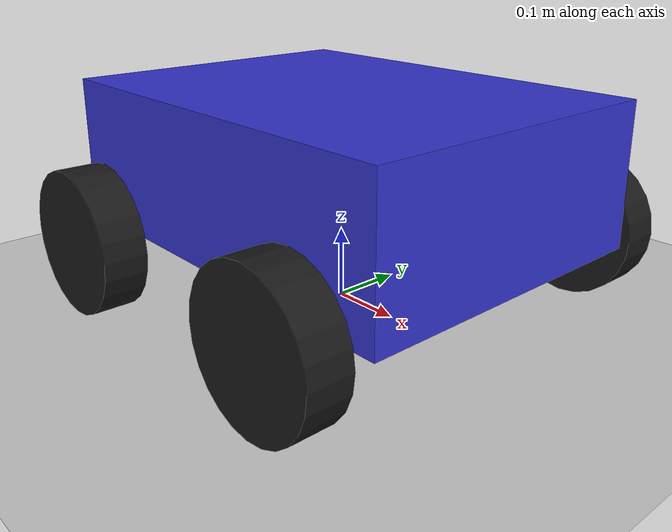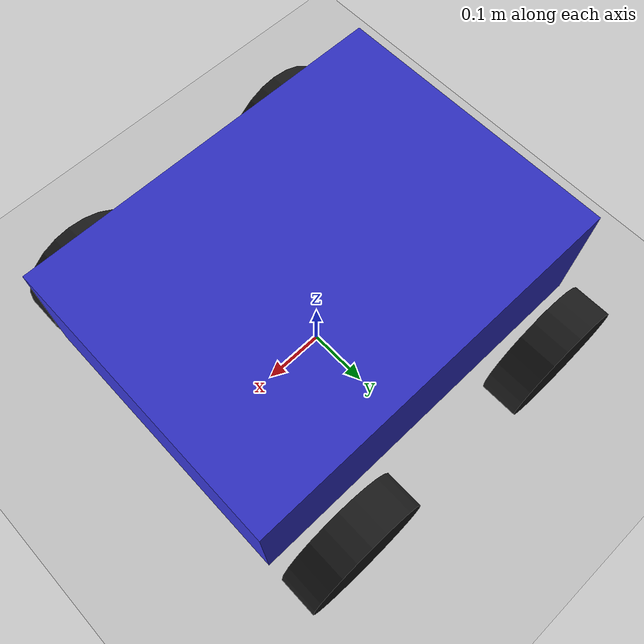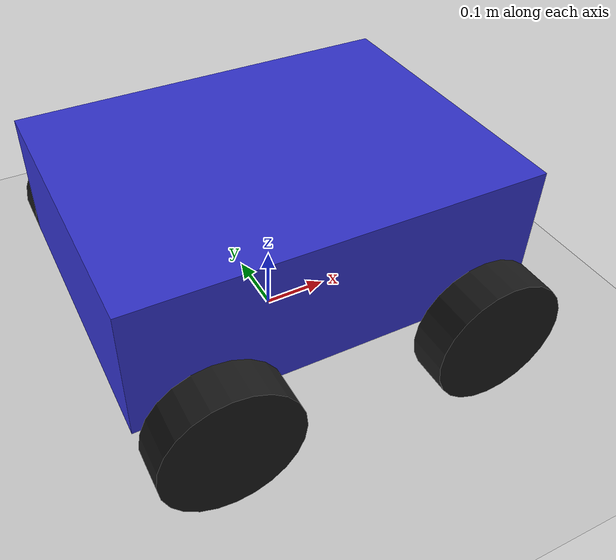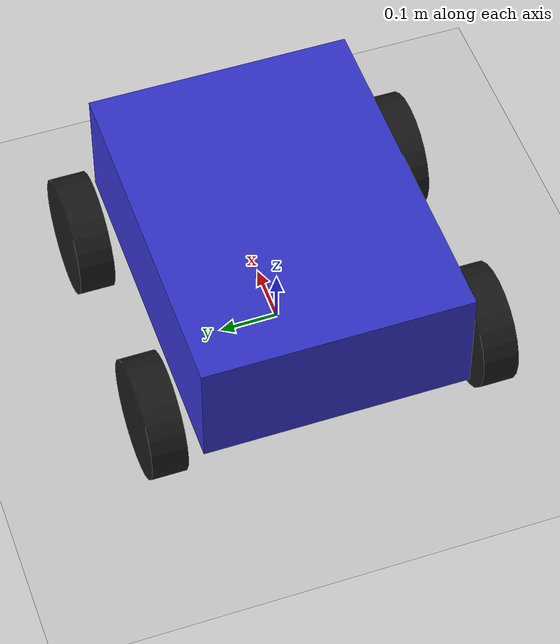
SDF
<?xml version="1.0" ?>

<sdf version="1.9">

  <world name="mecanum_test_world">

    <physics name="1ms" type="ode">
      <max_step_size>0.001</max_step_size>
      <real_time_factor>1.0</real_time_factor>
    </physics>

    <!-- Ground -->
    <model name="ground">

      <static>true</static>

      <link name="ground_link">

        <collision name="collision">
          <geometry>
            <plane>
              <normal>0 0 1</normal>
              <size>10 10</size>
            </plane>
          </geometry>
        </collision>

        <visual name="visual">
          <geometry>
            <plane>
              <normal>0 0 1</normal>
              <size>10 10</size>
            </plane>
          </geometry>
        </visual>

      </link>

    </model>

    <!-- Light -->
    <light
      name="sun"
      type="directional">

      <pose>0 0 5 0 0 0</pose>

      <diffuse>1 1 1 1</diffuse>
      <specular>0.2 0.2 0.2 1</specular>

      <direction>-0.5 0.5 -1</direction>

    </light>

    <!-- Mecanum Robot -->
    <include>

      <uri>model://mecanum_robot</uri>

      <name>mecanum_robot</name>

      <pose>0 0 0 0 0 0</pose>

    </include>

  </world>

</sdf>

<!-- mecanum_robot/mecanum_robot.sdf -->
<sdf version="1.9">

  <model name="mecanum_robot">

    <!-- ROBOT BASE -->

    <link name="base_link">

      <pose>0 0 0.20 0 0 0</pose>

      <inertial>
        <mass>10.0</mass>

        <inertia>
          <ixx>0.25</ixx>
          <ixy>0.0</ixy>
          <ixz>0.0</ixz>
          <iyy>0.45</iyy>
          <iyz>0.0</iyz>
          <izz>0.55</izz>
        </inertia>
      </inertial>

      <visual name="base_visual">

        <geometry>
          <box>
            <size>0.60 0.45 0.20</size>
          </box>
        </geometry>

        <material>
          <ambient>0.2 0.2 0.8 1</ambient>
          <diffuse>0.2 0.2 0.8 1</diffuse>
        </material>

      </visual>

      <collision name="base_collision">

        <geometry>
          <box>
            <size>0.60 0.45 0.20</size>
          </box>
        </geometry>

      </collision>

    </link>

    <!-- FRONT LEFT WHEEL -->

    <link name="front_left_wheel">

      <pose>0.20 0.28 0.10 1.5708 0 0</pose>

      <inertial>
        <mass>1.0</mass>

        <inertia>
          <ixx>0.005</ixx>
          <ixy>0.0</ixy>
          <ixz>0.0</ixz>
          <iyy>0.005</iyy>
          <iyz>0.0</iyz>
          <izz>0.005</izz>
        </inertia>
      </inertial>

      <visual name="visual">

        <geometry>
          <cylinder>
            <radius>0.10</radius>
            <length>0.06</length>
          </cylinder>
        </geometry>

        <material>
          <ambient>0.1 0.1 0.1 1</ambient>
          <diffuse>0.1 0.1 0.1 1</diffuse>
        </material>

      </visual>

      <collision name="collision">

        <geometry>
          <cylinder>
            <radius>0.10</radius>
            <length>0.06</length>
          </cylinder>
        </geometry>

        <surface>
          <friction>
            <ode>

              <mu>1.0</mu>
              <mu2>0.0</mu2>

              <fdir1 gz:expressed_in="base_link">
                1 -1 0
              </fdir1>

            </ode>
          </friction>
        </surface>

      </collision>

    </link>

    <!-- FRONT RIGHT WHEEL -->

    <link name="front_right_wheel">

      <pose>0.20 -0.28 0.10 1.5708 0 0</pose>

      <inertial>
        <mass>1.0</mass>

        <inertia>
          <ixx>0.005</ixx>
          <ixy>0.0</ixy>
          <ixz>0.0</ixz>
          <iyy>0.005</iyy>
          <iyz>0.0</iyz>
          <izz>0.005</izz>
        </inertia>
      </inertial>

      <visual name="visual">

        <geometry>
          <cylinder>
            <radius>0.10</radius>
            <length>0.06</length>
          </cylinder>
        </geometry>

        <material>
          <ambient>0.1 0.1 0.1 1</ambient>
          <diffuse>0.1 0.1 0.1 1</diffuse>
        </material>

      </visual>

      <collision name="collision">

        <geometry>
          <cylinder>
            <radius>0.10</radius>
            <length>0.06</length>
          </cylinder>
        </geometry>

        <surface>
          <friction>
            <ode>

              <mu>1.0</mu>
              <mu2>0.0</mu2>

              <fdir1 gz:expressed_in="base_link">
                1 1 0
              </fdir1>

            </ode>
          </friction>
        </surface>

      </collision>

    </link>

    <!-- REAR LEFT WHEEL -->

    <link name="rear_left_wheel">

      <pose>-0.20 0.28 0.10 1.5708 0 0</pose>

      <inertial>
        <mass>1.0</mass>

        <inertia>
          <ixx>0.005</ixx>
          <ixy>0.0</ixy>
          <ixz>0.0</ixz>
          <iyy>0.005</iyy>
          <iyz>0.0</iyz>
          <izz>0.005</izz>
        </inertia>
      </inertial>

      <visual name="visual">

        <geometry>
          <cylinder>
            <radius>0.10</radius>
            <length>0.06</length>
          </cylinder>
        </geometry>

        <material>
          <ambient>0.1 0.1 0.1 1</ambient>
          <diffuse>0.1 0.1 0.1 1</diffuse>
        </material>

      </visual>

      <collision name="collision">

        <geometry>
          <cylinder>
            <radius>0.10</radius>
            <length>0.06</length>
          </cylinder>
        </geometry>

        <surface>
          <friction>
            <ode>

              <mu>1.0</mu>
              <mu2>0.0</mu2>

              <fdir1 gz:expressed_in="base_link">
                1 1 0
              </fdir1>

            </ode>
          </friction>
        </surface>

      </collision>

    </link>

    <!-- REAR RIGHT WHEEL -->

    <link name="rear_right_wheel">

      <pose>-0.20 -0.28 0.10 1.5708 0 0</pose>

      <inertial>
        <mass>1.0</mass>

        <inertia>
          <ixx>0.005</ixx>
          <ixy>0.0</ixy>
          <ixz>0.0</ixz>
          <iyy>0.005</iyy>
          <iyz>0.0</iyz>
          <izz>0.005</izz>
        </inertia>
      </inertial>

      <visual name="visual">

        <geometry>
          <cylinder>
            <radius>0.10</radius>
            <length>0.06</length>
          </cylinder>
        </geometry>

        <material>
          <ambient>0.1 0.1 0.1 1</ambient>
          <diffuse>0.1 0.1 0.1 1</diffuse>
        </material>

      </visual>

      <collision name="collision">

        <geometry>
          <cylinder>
            <radius>0.10</radius>
            <length>0.06</length>
          </cylinder>
        </geometry>

        <surface>
          <friction>
            <ode>

              <mu>1.0</mu>
              <mu2>0.0</mu2>

              <fdir1 gz:expressed_in="base_link">
                1 -1 0
              </fdir1>

            </ode>
          </friction>
        </surface>

      </collision>

    </link>

    <!-- WHEEL JOINTS -->

    <joint name="front_left_wheel_joint"
           type="revolute">

      <parent>base_link</parent>
      <child>front_left_wheel</child>

      <axis>
        <xyz>0 1 0</xyz>

        <limit>
          <lower>-1.79769e+308</lower>
          <upper>1.79769e+308</upper>
        </limit>
      </axis>

    </joint>

    <joint name="front_right_wheel_joint"
           type="revolute">

      <parent>base_link</parent>
      <child>front_right_wheel</child>

      <axis>
        <xyz>0 1 0</xyz>

        <limit>
          <lower>-1.79769e+308</lower>
          <upper>1.79769e+308</upper>
        </limit>
      </axis>

    </joint>

    <joint name="rear_left_wheel_joint"
           type="revolute">

      <parent>base_link</parent>
      <child>rear_left_wheel</child>

      <axis>
        <xyz>0 1 0</xyz>

        <limit>
          <lower>-1.79769e+308</lower>
          <upper>1.79769e+308</upper>
        </limit>
      </axis>

    </joint>

    <joint name="rear_right_wheel_joint"
           type="revolute">

      <parent>base_link</parent>
      <child>rear_right_wheel</child>

      <axis>
        <xyz>0 1 0</xyz>

        <limit>
          <lower>-1.79769e+308</lower>
          <upper>1.79769e+308</upper>
        </limit>
      </axis>

    </joint>

    <!-- GAZEBO MECANUM DRIVE -->

    <plugin
      filename="gz-sim-mecanum-drive-system"
      name="gz::sim::systems::MecanumDrive">

      <front_left_joint>
        front_left_wheel_joint
      </front_left_joint>

      <front_right_joint>
        front_right_wheel_joint
      </front_right_joint>

      <back_left_joint>
        rear_left_wheel_joint
      </back_left_joint>

      <back_right_joint>
        rear_right_wheel_joint
      </back_right_joint>

      <wheel_separation>0.56</wheel_separation>

      <wheelbase>0.40</wheelbase>

      <wheel_radius>0.10</wheel_radius>

      <topic>/cmd_vel</topic>

      <min_acceleration>-2.0</min_acceleration>
      <max_acceleration>2.0</max_acceleration>

    </plugin>

  </model>

</sdf>
